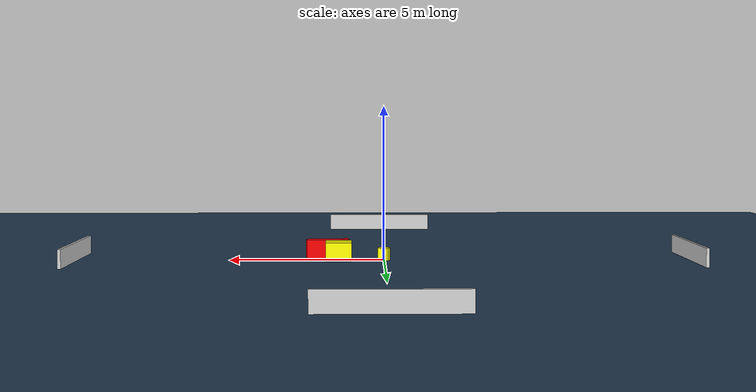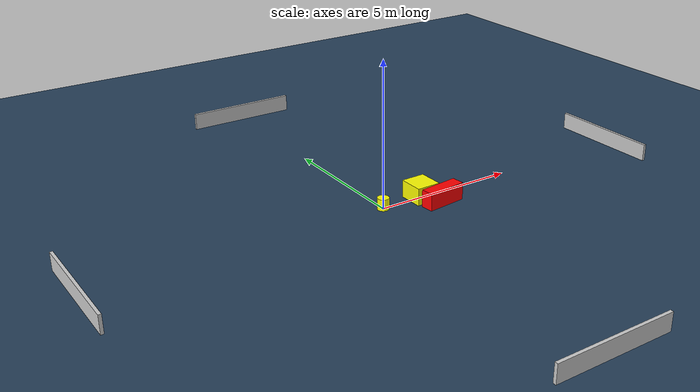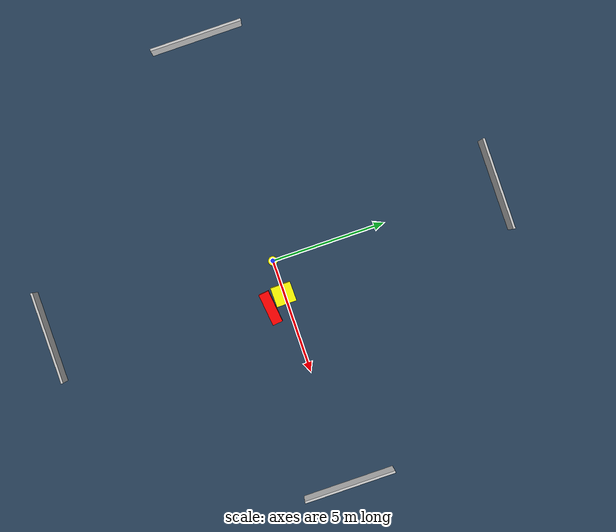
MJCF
<?xml version="1.0" ?>
<mujoco model="generated_environment">
  <option timestep="0.01" integrator="RK4" cone="elliptic"/>
  <default>
    <geom density="1"/>
  </default>
  <asset>
    <texture builtin="gradient" height="3072" name="skybox" rgb1="0.3 0.5 0.7" rgb2="0 0 0" type="skybox" width="512"/>
    <texture builtin="checker" height="300" name="groundplane" rgb1="0.2 0.3 0.4" rgb2="0.1 0.2 0.3" type="2d" width="300"/>
    <material name="groundplane" reflectance="0.2" texrepeat="5 5" texture="groundplane"/>
  </asset>
  <worldbody>
    <light dir="0 0 -1" directional="true" pos="0 0 1.5"/>
    <geom condim="3" friction="0.5 0.005 0.001" material="groundplane" name="floor" pos="0 0 0" size="0 0 0.05" type="plane"/>
    <body name="walls">
      <geom name="wall_1" condim="4" pos="-10.0 0.0 0.3" rgba="0.800000011920929 0.800000011920929 0.800000011920929 1.0" size="0.05 2.0 0.3" type="box"/>
      <geom name="wall_2" condim="4" pos="10.0 0.0 0.3" rgba="0.800000011920929 0.800000011920929 0.800000011920929 1.0" size="0.05 2.0 0.3" type="box"/>
      <geom name="wall_3" condim="4" pos="0.0 -10.0 0.3" rgba="0.800000011920929 0.800000011920929 0.800000011920929 1.0" size="2.0 0.05 0.3" type="box"/>
      <geom name="wall_4" condim="4" pos="0.0 10.0 0.3" rgba="0.800000011920929 0.800000011920929 0.800000011920929 1.0" size="2.0 0.05 0.3" type="box"/>
    </body>
    <body name="robot">
      <joint name="joint_x" type="slide" pos="0 0 0" axis="1 0 0"/>
      <joint name="joint_y" type="slide" pos="0 0 0" axis="0 1 0"/>
      <geom name="robot" type="cylinder" pos="0.0 0.0 0.2" size="0.2 0.2 0.0" mass="5.0" friction="1.0 0.005 0.0001" condim="4" rgba="1.0 1.0 0.0 1.0"/>
    </body>
    <body name="obstacle_1_movable">
      <geom name="obstacle_1_movable" condim="4" pos="1.4703104704020582 -0.033725726036627476 0.3" euler="0 0 180.93517664644287" friction="0.0 0.005 0.001" rgba="1.0 1.0 0.0 1.0" size="0.42021574804812156 0.4363071718345026 0.3" type="box" mass="0.1"/>
      <joint type="free"/>
    </body>
    <body name="obstacle_2_static">
      <geom name="obstacle_2_static" condim="4" pos="1.8427023451122464 -0.7285757030014934 0.3" euler="0 0 6.579711205052665" friction="0.0 0.005 0.001" rgba="1.0 0.0 0.0 1.0" size="0.6978188911306789 0.22157647069392838 0.3" type="box"/>
    </body>
  </worldbody>
  <actuator>
    <motor name="actuator_x" joint="joint_x" gear="1" ctrlrange="-1 1"/>
    <motor name="actuator_y" joint="joint_y" gear="1" ctrlrange="-1 1"/>
  </actuator>
</mujoco>
